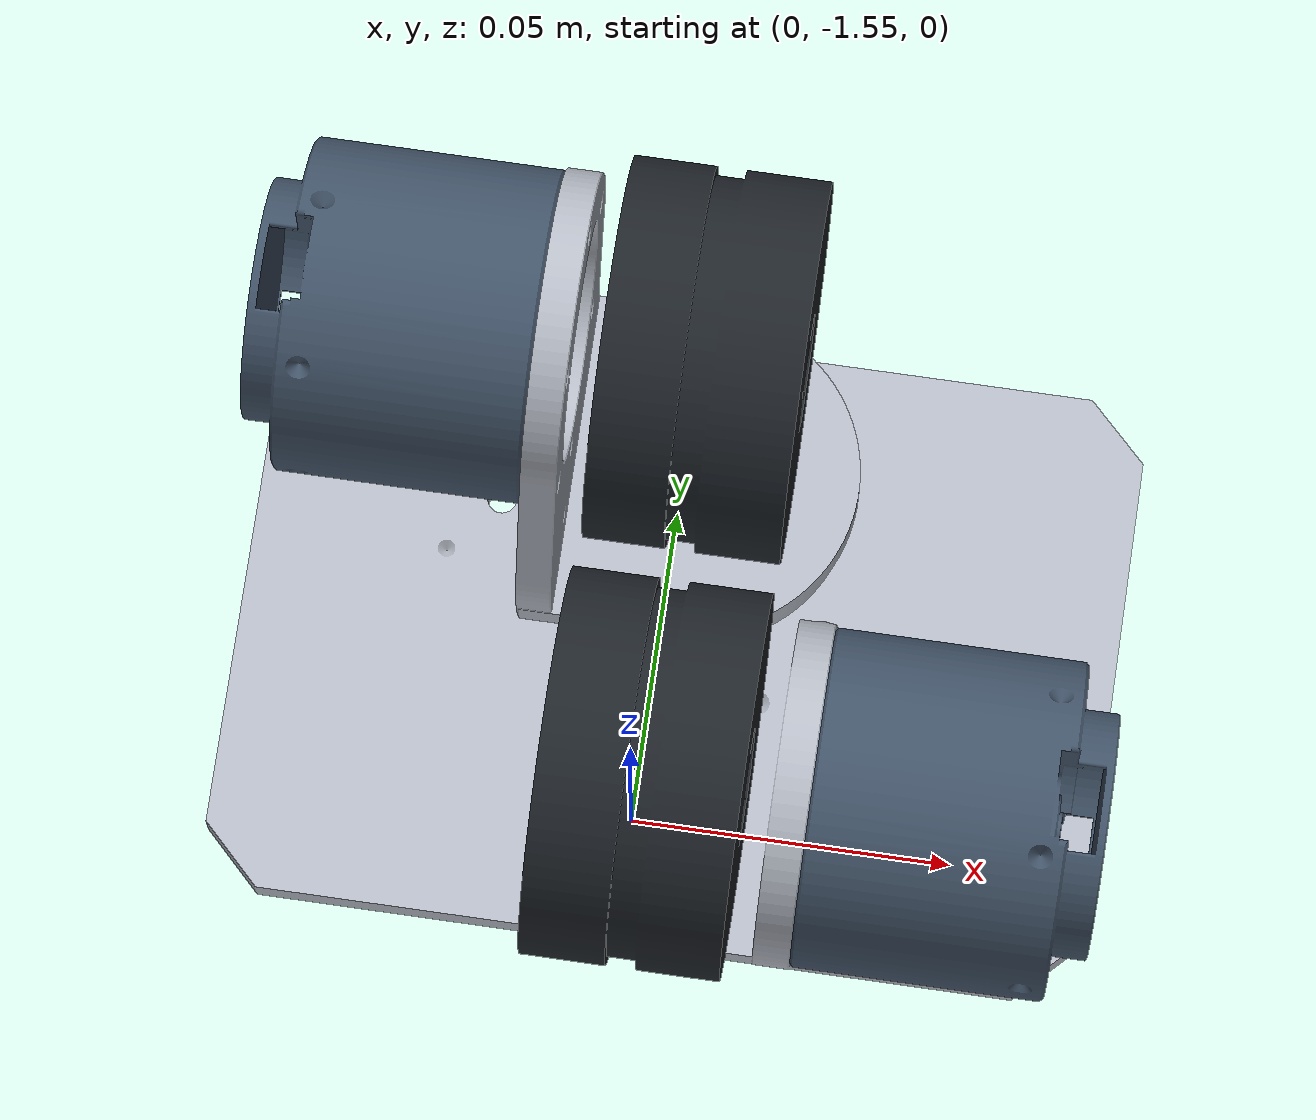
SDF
<sdf version="1.7">
 <world name="bridge_underside">
  <gravity>0 0 -9.81</gravity>
  <physics name="dart" type="ignored">
   <max_step_size>0.001</max_step_size>
   <real_time_factor>0</real_time_factor>
  </physics>
  <plugin filename="ignition-gazebo-physics-system" name="ignition::gazebo::systems::Physics">
   <engine>ignition-physics-dartsim-plugin</engine>
  </plugin>
  <plugin filename="ignition-gazebo-contact-system" name="ignition::gazebo::systems::Contact"/>
  <plugin filename="ignition-gazebo-user-commands-system" name="ignition::gazebo::systems::UserCommands"/>
  <plugin filename="ignition-gazebo-scene-broadcaster-system" name="ignition::gazebo::systems::SceneBroadcaster"/>
  <scene><ambient>0.65 0.65 0.65 1</ambient><background>0.15 0.18 0.22 1</background></scene>
  <light name="sun" type="directional">
   <pose>0 0 10 0 0 0</pose>
   <diffuse>0.9 0.9 0.9 1</diffuse>
   <direction>-0.5 -0.4 -1</direction>
  </light>
  <model name="magnetic_robot">
   <static>false</static>
   <self_collide>true</self_collide>
   <link name="base_link">
    <self_collide>true</self_collide>
    <inertial>
     <pose>-0.01669640313236539 0.02143332896454504 0.02952235075090278 0 0 0</pose>
     <mass>0.7962190308204766</mass>
     <inertia>
      <ixx>0.001831987699753752</ixx>
      <iyy>0.001285332298115545</iyy>
      <izz>0.001880155508218689</izz>
      <ixy>0.00030023215367392</ixy>
      <ixz>-0.000347314379692567</ixz>
      <iyz>0.000466609169345381</iyz>
     </inertia>
    </inertial>
    <visual name="robot_chassis_visual">
     <geometry><mesh><uri>model://magnetic_robot/meshes/robot_chassis.stl</uri></mesh></geometry>
     <material>
      <ambient>0.7 0.72 0.76 1</ambient>
      <diffuse>0.7 0.72 0.76 1</diffuse>
      <specular>0.15 0.15 0.15 1</specular>
     </material>
    </visual>
    <collision name="robot_chassis_collision_0">
     <geometry><mesh><uri>model://magnetic_robot/meshes/robot_chassis_collision_0.stl</uri></mesh></geometry>
     <surface><friction><ode><mu>0.8</mu><mu2>0.8</mu2></ode></friction></surface>
    </collision>
    <collision name="robot_chassis_collision_1">
     <geometry><mesh><uri>model://magnetic_robot/meshes/robot_chassis_collision_1.stl</uri></mesh></geometry>
     <surface><friction><ode><mu>0.8</mu><mu2>0.8</mu2></ode></friction></surface>
    </collision>
    <visual name="rear_motor_visual">
     <geometry><mesh><uri>model://magnetic_robot/meshes/rear_motor.stl</uri></mesh></geometry>
     <material>
      <ambient>0.25 0.32 0.4 1</ambient>
      <diffuse>0.25 0.32 0.4 1</diffuse>
      <specular>0.15 0.15 0.15 1</specular>
     </material>
    </visual>
    <collision name="rear_motor_collision_0">
     <geometry><mesh><uri>model://magnetic_robot/meshes/rear_motor_collision_0.stl</uri></mesh></geometry>
     <surface><friction><ode><mu>0.8</mu><mu2>0.8</mu2></ode></friction></surface>
    </collision>
   </link>
   <link name="front_steering_link">
    <pose>0.026000008737 0 0.046999994064 0 0 0</pose>
    <self_collide>true</self_collide>
    <inertial>
     <pose>0.00592058993996759 -0.03297798702958531 -0.03390483603737569 0 0 0</pose>
     <mass>0.5037809691795236</mass>
     <inertia>
      <ixx>0.0005671879949864165</ixx>
      <iyy>0.0003699582437427575</iyy>
      <izz>0.0004211826425839693</izz>
      <ixy>4.263925063058334e-05</ixy>
      <ixz>4.064454209028947e-05</ixz>
      <iyz>-0.0001971887272466101</iyz>
     </inertia>
    </inertial>
    <visual name="front_steering_visual">
     <geometry><mesh><uri>model://magnetic_robot/meshes/front_steering.stl</uri></mesh></geometry>
     <material>
      <ambient>0.7 0.72 0.76 1</ambient>
      <diffuse>0.7 0.72 0.76 1</diffuse>
      <specular>0.15 0.15 0.15 1</specular>
     </material>
    </visual>
    <collision name="front_steering_collision_0">
     <geometry><mesh><uri>model://magnetic_robot/meshes/front_steering_collision_0.stl</uri></mesh></geometry>
     <surface><friction><ode><mu>0.8</mu><mu2>0.8</mu2></ode></friction></surface>
    </collision>
    <collision name="front_steering_collision_1">
     <geometry><mesh><uri>model://magnetic_robot/meshes/front_steering_collision_1.stl</uri></mesh></geometry>
     <surface><friction><ode><mu>0.8</mu><mu2>0.8</mu2></ode></friction></surface>
    </collision>
    <collision name="front_steering_collision_2">
     <geometry><mesh><uri>model://magnetic_robot/meshes/front_steering_collision_2.stl</uri></mesh></geometry>
     <surface><friction><ode><mu>0.8</mu><mu2>0.8</mu2></ode></friction></surface>
    </collision>
    <visual name="front_motor_visual">
     <geometry><mesh><uri>model://magnetic_robot/meshes/front_motor.stl</uri></mesh></geometry>
     <material>
      <ambient>0.25 0.32 0.4 1</ambient>
      <diffuse>0.25 0.32 0.4 1</diffuse>
      <specular>0.15 0.15 0.15 1</specular>
     </material>
    </visual>
    <collision name="front_motor_collision_0">
     <geometry><mesh><uri>model://magnetic_robot/meshes/front_motor_collision_0.stl</uri></mesh></geometry>
     <surface><friction><ode><mu>0.8</mu><mu2>0.8</mu2></ode></friction></surface>
    </collision>
   </link>
   <link name="front_wheel_link">
    <pose>0.03499999999995763 1.617955838299767e-06 -5.996107468181355e-09 0 0 0</pose>
    <self_collide>true</self_collide>
    <inertial>
     <pose>1.564440664862665e-05 4.041569127597572e-06 -4.522740683739132e-05 0 0 0</pose>
     <mass>0.7</mass>
     <inertia>
      <ixx>0.0002511333880876556</ixx>
      <iyy>0.0003773690251926861</iyy>
      <izz>0.0002514085933266564</izz>
      <ixy>4.425863834136158e-11</ixy>
      <ixz>-1.081309487650233e-07</ixz>
      <iyz>-1.279616102240571e-10</iyz>
     </inertia>
    </inertial>
    <visual name="front_wheel_visual">
     <geometry><mesh><uri>model://magnetic_robot/meshes/front_wheel.stl</uri></mesh></geometry>
     <material>
      <ambient>0.12 0.14 0.16 1</ambient>
      <diffuse>0.12 0.14 0.16 1</diffuse>
      <specular>0.15 0.15 0.15 1</specular>
     </material>
    </visual>
    <collision name="front_wheel_band_0">
     <pose>0 -0.009500000000000001 0 1.570796326794897 0 0</pose>
     <geometry><cylinder><radius>0.0315</radius><length>0.0135</length></cylinder></geometry>
     <surface><friction><ode><mu>0.8</mu><mu2>0.8</mu2></ode></friction></surface>
    </collision>
    <sensor name="front_wheel_contact_0" type="contact">
     <always_on>true</always_on>
     <update_rate>0</update_rate>
     <contact><collision>front_wheel_band_0</collision></contact>
    </sensor>
    <collision name="front_wheel_band_1">
     <pose>0 -0.0002500000000000002 0 1.570796326794897 0 0</pose>
     <geometry><cylinder><radius>0.03</radius><length>0.004999999999999999</length></cylinder></geometry>
     <surface><friction><ode><mu>0.8</mu><mu2>0.8</mu2></ode></friction></surface>
    </collision>
    <sensor name="front_wheel_contact_1" type="contact">
     <always_on>true</always_on>
     <update_rate>0</update_rate>
     <contact><collision>front_wheel_band_1</collision></contact>
    </sensor>
    <collision name="front_wheel_band_2">
     <pose>0 0.009250000000000001 0 1.570796326794897 0 0</pose>
     <geometry><cylinder><radius>0.0315</radius><length>0.014000000000000002</length></cylinder></geometry>
     <surface><friction><ode><mu>0.8</mu><mu2>0.8</mu2></ode></friction></surface>
    </collision>
    <sensor name="front_wheel_contact_2" type="contact">
     <always_on>true</always_on>
     <update_rate>0</update_rate>
     <contact><collision>front_wheel_band_2</collision></contact>
    </sensor>
   </link>
   <link name="rear_wheel_link">
    <pose>-0.0350000000000369 -1.617956804502579e-06 5.99548568083752e-09 0 0 0</pose>
    <self_collide>true</self_collide>
    <inertial>
     <pose>-1.56444271777606e-05 -4.04142573180163e-06 -4.52275795241891e-05 0 0 0</pose>
     <mass>0.7</mass>
     <inertia>
      <ixx>0.0002511333886283832</ixx>
      <iyy>0.000377369027113465</iyy>
      <izz>0.0002514085950839763</izz>
      <ixy>4.42564751284985e-11</ixy>
      <ixz>1.08132728313764e-07</ixz>
      <iyz>1.279616482848986e-10</iyz>
     </inertia>
    </inertial>
    <visual name="rear_wheel_visual">
     <geometry><mesh><uri>model://magnetic_robot/meshes/rear_wheel.stl</uri></mesh></geometry>
     <material>
      <ambient>0.12 0.14 0.16 1</ambient>
      <diffuse>0.12 0.14 0.16 1</diffuse>
      <specular>0.15 0.15 0.15 1</specular>
     </material>
    </visual>
    <collision name="rear_wheel_band_0">
     <pose>0 0.009500000000000001 0 1.570796326794897 0 0</pose>
     <geometry><cylinder><radius>0.0315</radius><length>0.0135</length></cylinder></geometry>
     <surface><friction><ode><mu>0.8</mu><mu2>0.8</mu2></ode></friction></surface>
    </collision>
    <sensor name="rear_wheel_contact_0" type="contact">
     <always_on>true</always_on>
     <update_rate>0</update_rate>
     <contact><collision>rear_wheel_band_0</collision></contact>
    </sensor>
    <collision name="rear_wheel_band_1">
     <pose>0 0.0002500000000000002 0 1.570796326794897 0 0</pose>
     <geometry><cylinder><radius>0.03</radius><length>0.004999999999999999</length></cylinder></geometry>
     <surface><friction><ode><mu>0.8</mu><mu2>0.8</mu2></ode></friction></surface>
    </collision>
    <sensor name="rear_wheel_contact_1" type="contact">
     <always_on>true</always_on>
     <update_rate>0</update_rate>
     <contact><collision>rear_wheel_band_1</collision></contact>
    </sensor>
    <collision name="rear_wheel_band_2">
     <pose>0 -0.009250000000000001 0 1.570796326794897 0 0</pose>
     <geometry><cylinder><radius>0.0315</radius><length>0.014000000000000002</length></cylinder></geometry>
     <surface><friction><ode><mu>0.8</mu><mu2>0.8</mu2></ode></friction></surface>
    </collision>
    <sensor name="rear_wheel_contact_2" type="contact">
     <always_on>true</always_on>
     <update_rate>0</update_rate>
     <contact><collision>rear_wheel_band_2</collision></contact>
    </sensor>
   </link>
   <joint name="front_steering_joint" type="revolute">
    <parent>base_link</parent>
    <child>front_steering_link</child>
    <axis>
     <xyz>0 0 1</xyz>
     <dynamics><damping>0.02</damping></dynamics>
     <limit><lower>-0.26005405854715513</lower><upper>0.26005405854715513</upper></limit>
    </axis>
   </joint>
   <joint name="front_wheel_joint" type="revolute">
    <parent>front_steering_link</parent>
    <child>front_wheel_link</child>
    <axis><xyz>0 1 0</xyz><dynamics><damping>0.0001</damping></dynamics></axis>
   </joint>
   <joint name="rear_wheel_joint" type="revolute">
    <parent>base_link</parent>
    <child>rear_wheel_link</child>
    <axis><xyz>0 1 0</xyz><dynamics><damping>0.0001</damping></dynamics></axis>
   </joint>
   <plugin filename="libMagneticRobot.so" name="magnetic_robot::MagneticAdhesion">
    <force_per_wheel>200.0</force_per_wheel>
    <capture_gap>0.0005</capture_gap>
    <release_gap>0.001</release_gap>
    <default_surface_model>bridge</default_surface_model>
    <default_surface_file>surfaces/bridge.stl</default_surface_file>
    <surface><model>bridge</model><file>surfaces/bridge.stl</file></surface>
   </plugin>
   <plugin filename="libMagneticRobot.so" name="magnetic_robot::SteeringLimitMonitor">
    <hard_limit>0.2617993877991494</hard_limit>
   </plugin>
   <pose>0 -1.5 -0.0316 3.141592653589793 0 1.570796326794897</pose>
   <plugin filename="libMagneticRobot.so" name="magnetic_robot::TestRig">
    <brake>true</brake>
    <steering_torque>0</steering_torque>
    <wheel_torque>0</wheel_torque>
    <initial_steering_speed>0</initial_steering_speed>
   </plugin>
  </model>
  <light name="inspection_light" type="point">
   <pose>0 -1.5 1 0 0 0</pose>
   <diffuse>0.9 0.9 0.9 1</diffuse>
   <attenuation>
    <range>10</range>
    <constant>0.5</constant>
    <linear>0.01</linear>
    <quadratic>0.001</quadratic>
   </attenuation>
  </light>
 </world>
</sdf>
